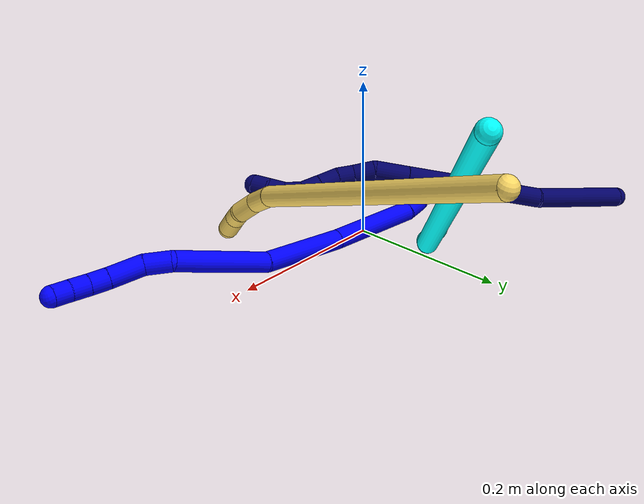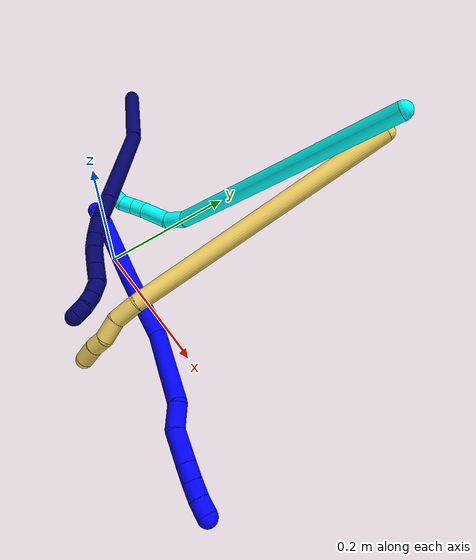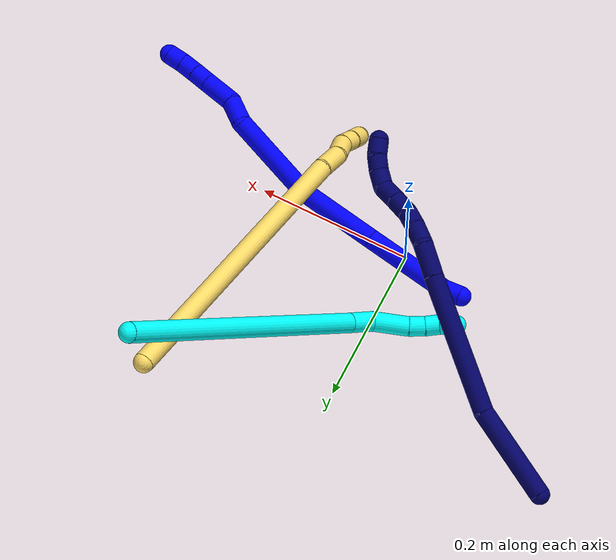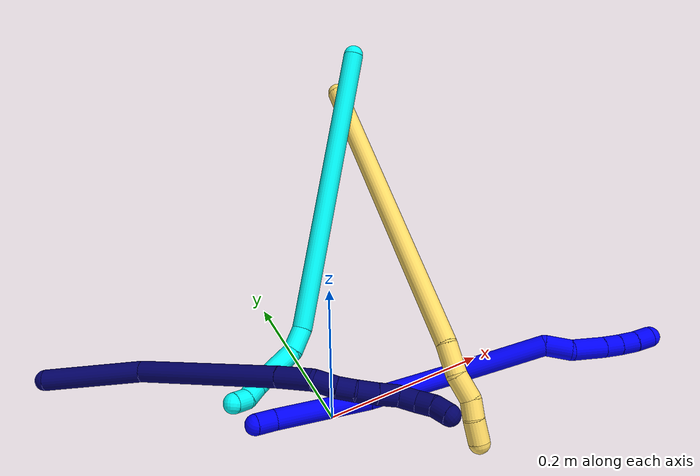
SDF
<sdf version="1.7">
 <world name="default">
  <model name="bin">
   <static>1</static>
   <link name="bottom">
    <collision name="collision-bottom">
     <pose>0 0 -0.01 0 -0 0</pose>
     <geometry><box><size>0.8 0.6 0.02</size></box></geometry>
     <surface>
      <friction><ode><mu>100</mu><mu2>100</mu2></ode></friction>
      <contact><collide_bitmask>65535</collide_bitmask></contact>
     </surface>
    </collision>
   </link>
   <link name="west_wall">
    <collision name="collision-west_wall">
     <pose>-0.41 0 0.1 0 -0 0</pose>
     <geometry><box><size>0.02 0.6 0.2</size></box></geometry>
     <surface>
      <friction><ode><mu>100</mu><mu2>100</mu2></ode></friction>
      <contact><collide_bitmask>65535</collide_bitmask></contact>
     </surface>
    </collision>
   </link>
   <link name="east_wall">
    <collision name="collision-east_wall">
     <pose>0.41 0 0.1 0 -0 0</pose>
     <geometry><box><size>0.02 0.6 0.2</size></box></geometry>
     <surface>
      <friction><ode><mu>100</mu><mu2>100</mu2></ode></friction>
      <contact><collide_bitmask>65535</collide_bitmask></contact>
     </surface>
    </collision>
   </link>
   <link name="south_wall">
    <collision name="collision-south_wall">
     <pose>0 -0.31 0.1 0 -0 0</pose>
     <geometry><box><size>0.8 0.02 0.2</size></box></geometry>
     <surface>
      <friction><ode><mu>100</mu><mu2>100</mu2></ode></friction>
      <contact><collide_bitmask>65535</collide_bitmask></contact>
     </surface>
    </collision>
   </link>
   <link name="north_wall">
    <collision name="collision-north_wall">
     <pose>0 0.31 0.1 0 -0 0</pose>
     <geometry><box><size>0.8 0.02 0.2</size></box></geometry>
     <surface>
      <friction><ode><mu>100</mu><mu2>100</mu2></ode></friction>
      <contact><collide_bitmask>65535</collide_bitmask></contact>
     </surface>
    </collision>
   </link>
  </model>
  <model name="1">
   <static>0</static>
   <link name="1">
    <collision name="collision-cylinder-e_1_1_4">
     <pose>0.012101 -0.000627 0.001517 0.392177 1.43598 0.343613</pose>
     <geometry><cylinder><radius>0.0125</radius><length>0.024423</length></cylinder></geometry>
     <surface>
      <friction><ode><mu>1.16</mu><mu2>1.16</mu2><slip1>0</slip1><slip2>0</slip2></ode></friction>
      <contact><ode><kp>1e+06</kp><kd>1</kd><max_vel>0</max_vel><min_depth>0.001</min_depth></ode></contact>
     </surface>
    </collision>
    <visual name="visual-cylinder-e_1_1_4">
     <pose>0.012101 -0.000627 0.001517 0.392177 1.43598 0.343613</pose>
     <geometry><cylinder><radius>0.0125</radius><length>0.024423</length></cylinder></geometry>
     <material><ambient>0 0 1 1</ambient></material>
    </visual>
    <collision name="collision-cylinder-e_2_4_5">
     <pose>0.077294 -0.01362 0.019102 0.655877 1.206 0.460221</pose>
     <geometry><cylinder><radius>0.0125</radius><length>0.113665</length></cylinder></geometry>
     <surface>
      <friction><ode><mu>1.16</mu><mu2>1.16</mu2><slip1>0</slip1><slip2>0</slip2></ode></friction>
      <contact><ode><kp>1e+06</kp><kd>1</kd><max_vel>0</max_vel><min_depth>0.001</min_depth></ode></contact>
     </surface>
    </collision>
    <visual name="visual-cylinder-e_2_4_5">
     <pose>0.077294 -0.01362 0.019102 0.655877 1.206 0.460221</pose>
     <geometry><cylinder><radius>0.0125</radius><length>0.113665</length></cylinder></geometry>
     <material><ambient>0 0 1 1</ambient></material>
    </visual>
    <collision name="collision-cylinder-e_3_5_6">
     <pose>0.178478 -0.035902 0.05471 0.469662 1.14326 0.305404</pose>
     <geometry><cylinder><radius>0.0125</radius><length>0.105696</length></cylinder></geometry>
     <surface>
      <friction><ode><mu>1.16</mu><mu2>1.16</mu2><slip1>0</slip1><slip2>0</slip2></ode></friction>
      <contact><ode><kp>1e+06</kp><kd>1</kd><max_vel>0</max_vel><min_depth>0.001</min_depth></ode></contact>
     </surface>
    </collision>
    <visual name="visual-cylinder-e_3_5_6">
     <pose>0.178478 -0.035902 0.05471 0.469662 1.14326 0.305404</pose>
     <geometry><cylinder><radius>0.0125</radius><length>0.105696</length></cylinder></geometry>
     <material><ambient>0 0 1 1</ambient></material>
    </visual>
    <collision name="collision-cylinder-e_4_6_7">
     <pose>0.271136 -0.065005 0.107903 0.518151 0.855248 0.240411</pose>
     <geometry><cylinder><radius>0.0125</radius><length>0.118099</length></cylinder></geometry>
     <surface>
      <friction><ode><mu>1.16</mu><mu2>1.16</mu2><slip1>0</slip1><slip2>0</slip2></ode></friction>
      <contact><ode><kp>1e+06</kp><kd>1</kd><max_vel>0</max_vel><min_depth>0.001</min_depth></ode></contact>
     </surface>
    </collision>
    <visual name="visual-cylinder-e_4_6_7">
     <pose>0.271136 -0.065005 0.107903 0.518151 0.855248 0.240411</pose>
     <geometry><cylinder><radius>0.0125</radius><length>0.118099</length></cylinder></geometry>
     <material><ambient>0 0 1 1</ambient></material>
    </visual>
    <collision name="collision-cylinder-e_5_7_8">
     <pose>0.327197 -0.094861 0.145277 1.23525 0.793931 0.578849</pose>
     <geometry><cylinder><radius>0.0125</radius><length>0.032238</length></cylinder></geometry>
     <surface>
      <friction><ode><mu>1.16</mu><mu2>1.16</mu2><slip1>0</slip1><slip2>0</slip2></ode></friction>
      <contact><ode><kp>1e+06</kp><kd>1</kd><max_vel>0</max_vel><min_depth>0.001</min_depth></ode></contact>
     </surface>
    </collision>
    <visual name="visual-cylinder-e_5_7_8">
     <pose>0.327197 -0.094861 0.145277 1.23525 0.793931 0.578849</pose>
     <geometry><cylinder><radius>0.0125</radius><length>0.032238</length></cylinder></geometry>
     <material><ambient>0 0 1 1</ambient></material>
    </visual>
    <collision name="collision-cylinder-e_6_8_9">
     <pose>0.35812 -0.111949 0.153613 0.947343 1.1844 0.664151</pose>
     <geometry><cylinder><radius>0.0125</radius><length>0.041948</length></cylinder></geometry>
     <surface>
      <friction><ode><mu>1.16</mu><mu2>1.16</mu2><slip1>0</slip1><slip2>0</slip2></ode></friction>
      <contact><ode><kp>1e+06</kp><kd>1</kd><max_vel>0</max_vel><min_depth>0.001</min_depth></ode></contact>
     </surface>
    </collision>
    <visual name="visual-cylinder-e_6_8_9">
     <pose>0.35812 -0.111949 0.153613 0.947343 1.1844 0.664151</pose>
     <geometry><cylinder><radius>0.0125</radius><length>0.041948</length></cylinder></geometry>
     <material><ambient>0 0 1 1</ambient></material>
    </visual>
    <collision name="collision-cylinder-e_7_9_10">
     <pose>0.387473 -0.121516 0.161301 0.797885 1.15347 0.535286</pose>
     <geometry><cylinder><radius>0.0125</radius><length>0.021715</length></cylinder></geometry>
     <surface>
      <friction><ode><mu>1.16</mu><mu2>1.16</mu2><slip1>0</slip1><slip2>0</slip2></ode></friction>
      <contact><ode><kp>1e+06</kp><kd>1</kd><max_vel>0</max_vel><min_depth>0.001</min_depth></ode></contact>
     </surface>
    </collision>
    <visual name="visual-cylinder-e_7_9_10">
     <pose>0.387473 -0.121516 0.161301 0.797885 1.15347 0.535286</pose>
     <geometry><cylinder><radius>0.0125</radius><length>0.021715</length></cylinder></geometry>
     <material><ambient>0 0 1 1</ambient></material>
    </visual>
    <collision name="collision-cylinder-e_8_10_11">
     <pose>0.407068 -0.127409 0.167824 0.67157 1.14308 0.441599</pose>
     <geometry><cylinder><radius>0.0125</radius><length>0.021252</length></cylinder></geometry>
     <surface>
      <friction><ode><mu>1.16</mu><mu2>1.16</mu2><slip1>0</slip1><slip2>0</slip2></ode></friction>
      <contact><ode><kp>1e+06</kp><kd>1</kd><max_vel>0</max_vel><min_depth>0.001</min_depth></ode></contact>
     </surface>
    </collision>
    <visual name="visual-cylinder-e_8_10_11">
     <pose>0.407068 -0.127409 0.167824 0.67157 1.14308 0.441599</pose>
     <geometry><cylinder><radius>0.0125</radius><length>0.021252</length></cylinder></geometry>
     <material><ambient>0 0 1 1</ambient></material>
    </visual>
    <collision name="collision-cylinder-e_9_11_2">
     <pose>0.426346 -0.131838 0.175106 0.414609 1.15989 0.273841</pose>
     <geometry><cylinder><radius>0.0125</radius><length>0.020964</length></cylinder></geometry>
     <surface>
      <friction><ode><mu>1.16</mu><mu2>1.16</mu2><slip1>0</slip1><slip2>0</slip2></ode></friction>
      <contact><ode><kp>1e+06</kp><kd>1</kd><max_vel>0</max_vel><min_depth>0.001</min_depth></ode></contact>
     </surface>
    </collision>
    <visual name="visual-cylinder-e_9_11_2">
     <pose>0.426346 -0.131838 0.175106 0.414609 1.15989 0.273841</pose>
     <geometry><cylinder><radius>0.0125</radius><length>0.020964</length></cylinder></geometry>
     <material><ambient>0 0 1 1</ambient></material>
    </visual>
    <collision name="collision-sphere-2">
     <pose>0.435955 -0.133525 0.178938 0 -0 0</pose>
     <geometry><sphere><radius>0.0125</radius></sphere></geometry>
     <surface>
      <friction><ode><mu>1.16</mu><mu2>1.16</mu2><slip1>0</slip1><slip2>0</slip2></ode></friction>
      <contact><ode><kp>1e+06</kp><kd>1</kd><max_vel>0</max_vel><min_depth>0.001</min_depth></ode></contact>
     </surface>
    </collision>
    <visual name="visual-sphere-2">
     <pose>0.435955 -0.133525 0.178938 0 -0 0</pose>
     <geometry><sphere><radius>0.0125</radius></sphere></geometry>
     <material><ambient>0 0 1 1</ambient></material>
    </visual>
    <collision name="collision-sphere-11">
     <pose>0.416736 -0.130151 0.171274 0 -0 0</pose>
     <geometry><sphere><radius>0.0125</radius></sphere></geometry>
     <surface>
      <friction><ode><mu>1.16</mu><mu2>1.16</mu2><slip1>0</slip1><slip2>0</slip2></ode></friction>
      <contact><ode><kp>1e+06</kp><kd>1</kd><max_vel>0</max_vel><min_depth>0.001</min_depth></ode></contact>
     </surface>
    </collision>
    <visual name="visual-sphere-11">
     <pose>0.416736 -0.130151 0.171274 0 -0 0</pose>
     <geometry><sphere><radius>0.0125</radius></sphere></geometry>
     <material><ambient>0 0 1 1</ambient></material>
    </visual>
    <collision name="collision-sphere-10">
     <pose>0.397399 -0.124666 0.164373 0 -0 0</pose>
     <geometry><sphere><radius>0.0125</radius></sphere></geometry>
     <surface>
      <friction><ode><mu>1.16</mu><mu2>1.16</mu2><slip1>0</slip1><slip2>0</slip2></ode></friction>
      <contact><ode><kp>1e+06</kp><kd>1</kd><max_vel>0</max_vel><min_depth>0.001</min_depth></ode></contact>
     </surface>
    </collision>
    <visual name="visual-sphere-10">
     <pose>0.397399 -0.124666 0.164373 0 -0 0</pose>
     <geometry><sphere><radius>0.0125</radius></sphere></geometry>
     <material><ambient>0 0 1 1</ambient></material>
    </visual>
    <collision name="collision-sphere-9">
     <pose>0.377547 -0.118366 0.158228 0 -0 0</pose>
     <geometry><sphere><radius>0.0125</radius></sphere></geometry>
     <surface>
      <friction><ode><mu>1.16</mu><mu2>1.16</mu2><slip1>0</slip1><slip2>0</slip2></ode></friction>
      <contact><ode><kp>1e+06</kp><kd>1</kd><max_vel>0</max_vel><min_depth>0.001</min_depth></ode></contact>
     </surface>
    </collision>
    <visual name="visual-sphere-9">
     <pose>0.377547 -0.118366 0.158228 0 -0 0</pose>
     <geometry><sphere><radius>0.0125</radius></sphere></geometry>
     <material><ambient>0 0 1 1</ambient></material>
    </visual>
    <collision name="collision-sphere-4">
     <pose>0.024202 -0.001255 0.003033 0 -0 0</pose>
     <geometry><sphere><radius>0.0125</radius></sphere></geometry>
     <surface>
      <friction><ode><mu>1.16</mu><mu2>1.16</mu2><slip1>0</slip1><slip2>0</slip2></ode></friction>
      <contact><ode><kp>1e+06</kp><kd>1</kd><max_vel>0</max_vel><min_depth>0.001</min_depth></ode></contact>
     </surface>
    </collision>
    <visual name="visual-sphere-4">
     <pose>0.024202 -0.001255 0.003033 0 -0 0</pose>
     <geometry><sphere><radius>0.0125</radius></sphere></geometry>
     <material><ambient>0 0 1 1</ambient></material>
    </visual>
    <collision name="collision-sphere-1">
     <geometry><sphere><radius>0.0125</radius></sphere></geometry>
     <surface>
      <friction><ode><mu>1.16</mu><mu2>1.16</mu2><slip1>0</slip1><slip2>0</slip2></ode></friction>
      <contact><ode><kp>1e+06</kp><kd>1</kd><max_vel>0</max_vel><min_depth>0.001</min_depth></ode></contact>
     </surface>
    </collision>
    <visual name="visual-sphere-1">
     <geometry><sphere><radius>0.0125</radius></sphere></geometry>
     <material><ambient>0 0 1 1</ambient></material>
    </visual>
    <collision name="collision-sphere-8">
     <pose>0.338692 -0.105531 0.148998 0 -0 0</pose>
     <geometry><sphere><radius>0.0125</radius></sphere></geometry>
     <surface>
      <friction><ode><mu>1.16</mu><mu2>1.16</mu2><slip1>0</slip1><slip2>0</slip2></ode></friction>
      <contact><ode><kp>1e+06</kp><kd>1</kd><max_vel>0</max_vel><min_depth>0.001</min_depth></ode></contact>
     </surface>
    </collision>
    <visual name="visual-sphere-8">
     <pose>0.338692 -0.105531 0.148998 0 -0 0</pose>
     <geometry><sphere><radius>0.0125</radius></sphere></geometry>
     <material><ambient>0 0 1 1</ambient></material>
    </visual>
    <collision name="collision-sphere-5">
     <pose>0.130387 -0.025985 0.035171 0 -0 0</pose>
     <geometry><sphere><radius>0.0125</radius></sphere></geometry>
     <surface>
      <friction><ode><mu>1.16</mu><mu2>1.16</mu2><slip1>0</slip1><slip2>0</slip2></ode></friction>
      <contact><ode><kp>1e+06</kp><kd>1</kd><max_vel>0</max_vel><min_depth>0.001</min_depth></ode></contact>
     </surface>
    </collision>
    <visual name="visual-sphere-5">
     <pose>0.130387 -0.025985 0.035171 0 -0 0</pose>
     <geometry><sphere><radius>0.0125</radius></sphere></geometry>
     <material><ambient>0 0 1 1</ambient></material>
    </visual>
    <collision name="collision-sphere-6">
     <pose>0.226569 -0.045819 0.07425 0 -0 0</pose>
     <geometry><sphere><radius>0.0125</radius></sphere></geometry>
     <surface>
      <friction><ode><mu>1.16</mu><mu2>1.16</mu2><slip1>0</slip1><slip2>0</slip2></ode></friction>
      <contact><ode><kp>1e+06</kp><kd>1</kd><max_vel>0</max_vel><min_depth>0.001</min_depth></ode></contact>
     </surface>
    </collision>
    <visual name="visual-sphere-6">
     <pose>0.226569 -0.045819 0.07425 0 -0 0</pose>
     <geometry><sphere><radius>0.0125</radius></sphere></geometry>
     <material><ambient>0 0 1 1</ambient></material>
    </visual>
    <collision name="collision-sphere-7">
     <pose>0.315703 -0.084191 0.141556 0 -0 0</pose>
     <geometry><sphere><radius>0.0125</radius></sphere></geometry>
     <surface>
      <friction><ode><mu>1.16</mu><mu2>1.16</mu2><slip1>0</slip1><slip2>0</slip2></ode></friction>
      <contact><ode><kp>1e+06</kp><kd>1</kd><max_vel>0</max_vel><min_depth>0.001</min_depth></ode></contact>
     </surface>
    </collision>
    <visual name="visual-sphere-7">
     <pose>0.315703 -0.084191 0.141556 0 -0 0</pose>
     <geometry><sphere><radius>0.0125</radius></sphere></geometry>
     <material><ambient>0 0 1 1</ambient></material>
    </visual>
    <inertial>
     <pose>0.22308 -0.057799 0.085203 0 -0 0</pose>
     <mass>0.5</mass>
     <inertia>
      <ixx>0.000272</ixx>
      <ixy>0</ixy>
      <ixz>0</ixz>
      <iyy>0.00042</iyy>
      <iyz>0</iyz>
      <izz>-0.000222</izz>
     </inertia>
    </inertial>
   </link>
   <pose>-0.087318 0.019626 0.016431 0.069956 0.325902 0.056881</pose>
  </model>
  <model name="3">
   <static>0</static>
   <link name="3">
    <collision name="collision-cylinder-e_1_1_4">
     <pose>-0.019446 0.00034 -0.180207 -3.13971 -0.10749 3.10655</pose>
     <geometry><cylinder><radius>0.0125</radius><length>0.362508</length></cylinder></geometry>
     <surface>
      <friction><ode><mu>1.16</mu><mu2>1.16</mu2><slip1>0</slip1><slip2>0</slip2></ode></friction>
      <contact><ode><kp>1e+06</kp><kd>1</kd><max_vel>0</max_vel><min_depth>0.001</min_depth></ode></contact>
     </surface>
    </collision>
    <visual name="visual-cylinder-e_1_1_4">
     <pose>-0.019446 0.00034 -0.180207 -3.13971 -0.10749 3.10655</pose>
     <geometry><cylinder><radius>0.0125</radius><length>0.362508</length></cylinder></geometry>
     <material><ambient>0.003922 1 0.996078 1</ambient></material>
    </visual>
    <collision name="collision-cylinder-e_2_4_5">
     <pose>-0.04101 -0.004914 -0.37501 2.7756 -0.134769 -0.699348</pose>
     <geometry><cylinder><radius>0.0125</radius><length>0.031547</length></cylinder></geometry>
     <surface>
      <friction><ode><mu>1.16</mu><mu2>1.16</mu2><slip1>0</slip1><slip2>0</slip2></ode></friction>
      <contact><ode><kp>1e+06</kp><kd>1</kd><max_vel>0</max_vel><min_depth>0.001</min_depth></ode></contact>
     </surface>
    </collision>
    <visual name="visual-cylinder-e_2_4_5">
     <pose>-0.04101 -0.004914 -0.37501 2.7756 -0.134769 -0.699348</pose>
     <geometry><cylinder><radius>0.0125</radius><length>0.031547</length></cylinder></geometry>
     <material><ambient>0.003922 1 0.996078 1</ambient></material>
    </visual>
    <collision name="collision-cylinder-e_3_5_6">
     <pose>-0.051284 -0.024239 -0.405723 2.43598 -0.367616 -0.935101</pose>
     <geometry><cylinder><radius>0.0125</radius><length>0.045377</length></cylinder></geometry>
     <surface>
      <friction><ode><mu>1.16</mu><mu2>1.16</mu2><slip1>0</slip1><slip2>0</slip2></ode></friction>
      <contact><ode><kp>1e+06</kp><kd>1</kd><max_vel>0</max_vel><min_depth>0.001</min_depth></ode></contact>
     </surface>
    </collision>
    <visual name="visual-cylinder-e_3_5_6">
     <pose>-0.051284 -0.024239 -0.405723 2.43598 -0.367616 -0.935101</pose>
     <geometry><cylinder><radius>0.0125</radius><length>0.045377</length></cylinder></geometry>
     <material><ambient>0.003922 1 0.996078 1</ambient></material>
    </visual>
    <collision name="collision-cylinder-e_4_6_7">
     <pose>-0.061644 -0.044902 -0.428959 2.36947 -0.218491 -0.52714</pose>
     <geometry><cylinder><radius>0.0125</radius><length>0.020358</length></cylinder></geometry>
     <surface>
      <friction><ode><mu>1.16</mu><mu2>1.16</mu2><slip1>0</slip1><slip2>0</slip2></ode></friction>
      <contact><ode><kp>1e+06</kp><kd>1</kd><max_vel>0</max_vel><min_depth>0.001</min_depth></ode></contact>
     </surface>
    </collision>
    <visual name="visual-cylinder-e_4_6_7">
     <pose>-0.061644 -0.044902 -0.428959 2.36947 -0.218491 -0.52714</pose>
     <geometry><cylinder><radius>0.0125</radius><length>0.020358</length></cylinder></geometry>
     <material><ambient>0.003922 1 0.996078 1</ambient></material>
    </visual>
    <collision name="collision-cylinder-e_5_7_8">
     <pose>-0.065011 -0.058985 -0.443066 2.34475 -0.115571 -0.273156</pose>
     <geometry><cylinder><radius>0.0125</radius><length>0.02013</length></cylinder></geometry>
     <surface>
      <friction><ode><mu>1.16</mu><mu2>1.16</mu2><slip1>0</slip1><slip2>0</slip2></ode></friction>
      <contact><ode><kp>1e+06</kp><kd>1</kd><max_vel>0</max_vel><min_depth>0.001</min_depth></ode></contact>
     </surface>
    </collision>
    <visual name="visual-cylinder-e_5_7_8">
     <pose>-0.065011 -0.058985 -0.443066 2.34475 -0.115571 -0.273156</pose>
     <geometry><cylinder><radius>0.0125</radius><length>0.02013</length></cylinder></geometry>
     <material><ambient>0.003922 1 0.996078 1</ambient></material>
    </visual>
    <collision name="collision-cylinder-e_6_8_2">
     <pose>-0.068842 -0.07536 -0.45298 1.87788 -0.269162 -0.365827</pose>
     <geometry><cylinder><radius>0.0125</radius><length>0.02008</length></cylinder></geometry>
     <surface>
      <friction><ode><mu>1.16</mu><mu2>1.16</mu2><slip1>0</slip1><slip2>0</slip2></ode></friction>
      <contact><ode><kp>1e+06</kp><kd>1</kd><max_vel>0</max_vel><min_depth>0.001</min_depth></ode></contact>
     </surface>
    </collision>
    <visual name="visual-cylinder-e_6_8_2">
     <pose>-0.068842 -0.07536 -0.45298 1.87788 -0.269162 -0.365827</pose>
     <geometry><cylinder><radius>0.0125</radius><length>0.02008</length></cylinder></geometry>
     <material><ambient>0.003922 1 0.996078 1</ambient></material>
    </visual>
    <collision name="collision-sphere-2">
     <pose>-0.071512 -0.084586 -0.455905 0 -0 0</pose>
     <geometry><sphere><radius>0.0125</radius></sphere></geometry>
     <surface>
      <friction><ode><mu>1.16</mu><mu2>1.16</mu2><slip1>0</slip1><slip2>0</slip2></ode></friction>
      <contact><ode><kp>1e+06</kp><kd>1</kd><max_vel>0</max_vel><min_depth>0.001</min_depth></ode></contact>
     </surface>
    </collision>
    <visual name="visual-sphere-2">
     <pose>-0.071512 -0.084586 -0.455905 0 -0 0</pose>
     <geometry><sphere><radius>0.0125</radius></sphere></geometry>
     <material><ambient>0.003922 1 0.996078 1</ambient></material>
    </visual>
    <collision name="collision-sphere-4">
     <pose>-0.038891 0.000679 -0.360415 0 -0 0</pose>
     <geometry><sphere><radius>0.0125</radius></sphere></geometry>
     <surface>
      <friction><ode><mu>1.16</mu><mu2>1.16</mu2><slip1>0</slip1><slip2>0</slip2></ode></friction>
      <contact><ode><kp>1e+06</kp><kd>1</kd><max_vel>0</max_vel><min_depth>0.001</min_depth></ode></contact>
     </surface>
    </collision>
    <visual name="visual-sphere-4">
     <pose>-0.038891 0.000679 -0.360415 0 -0 0</pose>
     <geometry><sphere><radius>0.0125</radius></sphere></geometry>
     <material><ambient>0.003922 1 0.996078 1</ambient></material>
    </visual>
    <collision name="collision-sphere-1">
     <geometry><sphere><radius>0.0125</radius></sphere></geometry>
     <surface>
      <friction><ode><mu>1.16</mu><mu2>1.16</mu2><slip1>0</slip1><slip2>0</slip2></ode></friction>
      <contact><ode><kp>1e+06</kp><kd>1</kd><max_vel>0</max_vel><min_depth>0.001</min_depth></ode></contact>
     </surface>
    </collision>
    <visual name="visual-sphere-1">
     <geometry><sphere><radius>0.0125</radius></sphere></geometry>
     <material><ambient>0.003922 1 0.996078 1</ambient></material>
    </visual>
    <collision name="collision-sphere-8">
     <pose>-0.066172 -0.066135 -0.450054 0 -0 0</pose>
     <geometry><sphere><radius>0.0125</radius></sphere></geometry>
     <surface>
      <friction><ode><mu>1.16</mu><mu2>1.16</mu2><slip1>0</slip1><slip2>0</slip2></ode></friction>
      <contact><ode><kp>1e+06</kp><kd>1</kd><max_vel>0</max_vel><min_depth>0.001</min_depth></ode></contact>
     </surface>
    </collision>
    <visual name="visual-sphere-8">
     <pose>-0.066172 -0.066135 -0.450054 0 -0 0</pose>
     <geometry><sphere><radius>0.0125</radius></sphere></geometry>
     <material><ambient>0.003922 1 0.996078 1</ambient></material>
    </visual>
    <collision name="collision-sphere-5">
     <pose>-0.04313 -0.010508 -0.389606 0 -0 0</pose>
     <geometry><sphere><radius>0.0125</radius></sphere></geometry>
     <surface>
      <friction><ode><mu>1.16</mu><mu2>1.16</mu2><slip1>0</slip1><slip2>0</slip2></ode></friction>
      <contact><ode><kp>1e+06</kp><kd>1</kd><max_vel>0</max_vel><min_depth>0.001</min_depth></ode></contact>
     </surface>
    </collision>
    <visual name="visual-sphere-5">
     <pose>-0.04313 -0.010508 -0.389606 0 -0 0</pose>
     <geometry><sphere><radius>0.0125</radius></sphere></geometry>
     <material><ambient>0.003922 1 0.996078 1</ambient></material>
    </visual>
    <collision name="collision-sphere-6">
     <pose>-0.059438 -0.037969 -0.421839 0 -0 0</pose>
     <geometry><sphere><radius>0.0125</radius></sphere></geometry>
     <surface>
      <friction><ode><mu>1.16</mu><mu2>1.16</mu2><slip1>0</slip1><slip2>0</slip2></ode></friction>
      <contact><ode><kp>1e+06</kp><kd>1</kd><max_vel>0</max_vel><min_depth>0.001</min_depth></ode></contact>
     </surface>
    </collision>
    <visual name="visual-sphere-6">
     <pose>-0.059438 -0.037969 -0.421839 0 -0 0</pose>
     <geometry><sphere><radius>0.0125</radius></sphere></geometry>
     <material><ambient>0.003922 1 0.996078 1</ambient></material>
    </visual>
    <collision name="collision-sphere-7">
     <pose>-0.063851 -0.051835 -0.436078 0 -0 0</pose>
     <geometry><sphere><radius>0.0125</radius></sphere></geometry>
     <surface>
      <friction><ode><mu>1.16</mu><mu2>1.16</mu2><slip1>0</slip1><slip2>0</slip2></ode></friction>
      <contact><ode><kp>1e+06</kp><kd>1</kd><max_vel>0</max_vel><min_depth>0.001</min_depth></ode></contact>
     </surface>
    </collision>
    <visual name="visual-sphere-7">
     <pose>-0.063851 -0.051835 -0.436078 0 -0 0</pose>
     <geometry><sphere><radius>0.0125</radius></sphere></geometry>
     <material><ambient>0.003922 1 0.996078 1</ambient></material>
    </visual>
    <inertial>
     <pose>-0.029232 -0.009493 -0.24463 0 -0 0</pose>
     <mass>0.5</mass>
     <inertia>
      <ixx>-0.003824</ixx>
      <ixy>0</ixy>
      <ixz>0</ixz>
      <iyy>0.004095</iyy>
      <iyz>0</iyz>
      <izz>0.0004</izz>
     </inertia>
    </inertial>
   </link>
   <pose>0.196262 0.315734 0.277716 -0.82306 -0.28904 -0.856495</pose>
  </model>
  <model name="5">
   <static>0</static>
   <link name="5">
    <collision name="collision-cylinder-e_1_1_4">
     <pose>-0.026257 -0.148906 -0.117601 2.23926 -0.137509 -0.282377</pose>
     <geometry><cylinder><radius>0.0125</radius><length>0.383106</length></cylinder></geometry>
     <surface>
      <friction><ode><mu>1.16</mu><mu2>1.16</mu2><slip1>0</slip1><slip2>0</slip2></ode></friction>
      <contact><ode><kp>1e+06</kp><kd>1</kd><max_vel>0</max_vel><min_depth>0.001</min_depth></ode></contact>
     </surface>
    </collision>
    <visual name="visual-cylinder-e_1_1_4">
     <pose>-0.026257 -0.148906 -0.117601 2.23926 -0.137509 -0.282377</pose>
     <geometry><cylinder><radius>0.0125</radius><length>0.383106</length></cylinder></geometry>
     <material><ambient>1 0.858824 0.4 1</ambient></material>
    </visual>
    <collision name="collision-cylinder-e_2_4_5">
     <pose>-0.055295 -0.309592 -0.249054 2.43689 -0.151713 -0.407659</pose>
     <geometry><cylinder><radius>0.0125</radius><length>0.03679</length></cylinder></geometry>
     <surface>
      <friction><ode><mu>1.16</mu><mu2>1.16</mu2><slip1>0</slip1><slip2>0</slip2></ode></friction>
      <contact><ode><kp>1e+06</kp><kd>1</kd><max_vel>0</max_vel><min_depth>0.001</min_depth></ode></contact>
     </surface>
    </collision>
    <visual name="visual-cylinder-e_2_4_5">
     <pose>-0.055295 -0.309592 -0.249054 2.43689 -0.151713 -0.407659</pose>
     <geometry><cylinder><radius>0.0125</radius><length>0.03679</length></cylinder></geometry>
     <material><ambient>1 0.858824 0.4 1</ambient></material>
    </visual>
    <collision name="collision-cylinder-e_3_5_6">
     <pose>-0.055767 -0.329776 -0.275641 2.55822 0.150109 0.490792</pose>
     <geometry><cylinder><radius>0.0125</radius><length>0.030864</length></cylinder></geometry>
     <surface>
      <friction><ode><mu>1.16</mu><mu2>1.16</mu2><slip1>0</slip1><slip2>0</slip2></ode></friction>
      <contact><ode><kp>1e+06</kp><kd>1</kd><max_vel>0</max_vel><min_depth>0.001</min_depth></ode></contact>
     </surface>
    </collision>
    <visual name="visual-cylinder-e_3_5_6">
     <pose>-0.055767 -0.329776 -0.275641 2.55822 0.150109 0.490792</pose>
     <geometry><cylinder><radius>0.0125</radius><length>0.030864</length></cylinder></geometry>
     <material><ambient>1 0.858824 0.4 1</ambient></material>
    </visual>
    <collision name="collision-cylinder-e_4_6_7">
     <pose>-0.055955 -0.343324 -0.297866 2.64499 -0.227273 -0.845959</pose>
     <geometry><cylinder><radius>0.0125</radius><length>0.022158</length></cylinder></geometry>
     <surface>
      <friction><ode><mu>1.16</mu><mu2>1.16</mu2><slip1>0</slip1><slip2>0</slip2></ode></friction>
      <contact><ode><kp>1e+06</kp><kd>1</kd><max_vel>0</max_vel><min_depth>0.001</min_depth></ode></contact>
     </surface>
    </collision>
    <visual name="visual-cylinder-e_4_6_7">
     <pose>-0.055955 -0.343324 -0.297866 2.64499 -0.227273 -0.845959</pose>
     <geometry><cylinder><radius>0.0125</radius><length>0.022158</length></cylinder></geometry>
     <material><ambient>1 0.858824 0.4 1</ambient></material>
    </visual>
    <collision name="collision-cylinder-e_5_7_2">
     <pose>-0.059682 -0.353549 -0.319847 2.75515 -0.090994 -0.457244</pose>
     <geometry><cylinder><radius>0.0125</radius><length>0.027083</length></cylinder></geometry>
     <surface>
      <friction><ode><mu>1.16</mu><mu2>1.16</mu2><slip1>0</slip1><slip2>0</slip2></ode></friction>
      <contact><ode><kp>1e+06</kp><kd>1</kd><max_vel>0</max_vel><min_depth>0.001</min_depth></ode></contact>
     </surface>
    </collision>
    <visual name="visual-cylinder-e_5_7_2">
     <pose>-0.059682 -0.353549 -0.319847 2.75515 -0.090994 -0.457244</pose>
     <geometry><cylinder><radius>0.0125</radius><length>0.027083</length></cylinder></geometry>
     <material><ambient>1 0.858824 0.4 1</ambient></material>
    </visual>
    <collision name="collision-sphere-2">
     <pose>-0.060913 -0.358632 -0.332338 0 -0 0</pose>
     <geometry><sphere><radius>0.0125</radius></sphere></geometry>
     <surface>
      <friction><ode><mu>1.16</mu><mu2>1.16</mu2><slip1>0</slip1><slip2>0</slip2></ode></friction>
      <contact><ode><kp>1e+06</kp><kd>1</kd><max_vel>0</max_vel><min_depth>0.001</min_depth></ode></contact>
     </surface>
    </collision>
    <visual name="visual-sphere-2">
     <pose>-0.060913 -0.358632 -0.332338 0 -0 0</pose>
     <geometry><sphere><radius>0.0125</radius></sphere></geometry>
     <material><ambient>1 0.858824 0.4 1</ambient></material>
    </visual>
    <collision name="collision-sphere-7">
     <pose>-0.058452 -0.348467 -0.307356 0 -0 0</pose>
     <geometry><sphere><radius>0.0125</radius></sphere></geometry>
     <surface>
      <friction><ode><mu>1.16</mu><mu2>1.16</mu2><slip1>0</slip1><slip2>0</slip2></ode></friction>
      <contact><ode><kp>1e+06</kp><kd>1</kd><max_vel>0</max_vel><min_depth>0.001</min_depth></ode></contact>
     </surface>
    </collision>
    <visual name="visual-sphere-7">
     <pose>-0.058452 -0.348467 -0.307356 0 -0 0</pose>
     <geometry><sphere><radius>0.0125</radius></sphere></geometry>
     <material><ambient>1 0.858824 0.4 1</ambient></material>
    </visual>
    <collision name="collision-sphere-6">
     <pose>-0.053459 -0.338181 -0.288376 0 -0 0</pose>
     <geometry><sphere><radius>0.0125</radius></sphere></geometry>
     <surface>
      <friction><ode><mu>1.16</mu><mu2>1.16</mu2><slip1>0</slip1><slip2>0</slip2></ode></friction>
      <contact><ode><kp>1e+06</kp><kd>1</kd><max_vel>0</max_vel><min_depth>0.001</min_depth></ode></contact>
     </surface>
    </collision>
    <visual name="visual-sphere-6">
     <pose>-0.053459 -0.338181 -0.288376 0 -0 0</pose>
     <geometry><sphere><radius>0.0125</radius></sphere></geometry>
     <material><ambient>1 0.858824 0.4 1</ambient></material>
    </visual>
    <collision name="collision-sphere-5">
     <pose>-0.058075 -0.321372 -0.262906 0 -0 0</pose>
     <geometry><sphere><radius>0.0125</radius></sphere></geometry>
     <surface>
      <friction><ode><mu>1.16</mu><mu2>1.16</mu2><slip1>0</slip1><slip2>0</slip2></ode></friction>
      <contact><ode><kp>1e+06</kp><kd>1</kd><max_vel>0</max_vel><min_depth>0.001</min_depth></ode></contact>
     </surface>
    </collision>
    <visual name="visual-sphere-5">
     <pose>-0.058075 -0.321372 -0.262906 0 -0 0</pose>
     <geometry><sphere><radius>0.0125</radius></sphere></geometry>
     <material><ambient>1 0.858824 0.4 1</ambient></material>
    </visual>
    <collision name="collision-sphere-1">
     <geometry><sphere><radius>0.0125</radius></sphere></geometry>
     <surface>
      <friction><ode><mu>1.16</mu><mu2>1.16</mu2><slip1>0</slip1><slip2>0</slip2></ode></friction>
      <contact><ode><kp>1e+06</kp><kd>1</kd><max_vel>0</max_vel><min_depth>0.001</min_depth></ode></contact>
     </surface>
    </collision>
    <visual name="visual-sphere-1">
     <geometry><sphere><radius>0.0125</radius></sphere></geometry>
     <material><ambient>1 0.858824 0.4 1</ambient></material>
    </visual>
    <collision name="collision-sphere-4">
     <pose>-0.052515 -0.297813 -0.235201 0 -0 0</pose>
     <geometry><sphere><radius>0.0125</radius></sphere></geometry>
     <surface>
      <friction><ode><mu>1.16</mu><mu2>1.16</mu2><slip1>0</slip1><slip2>0</slip2></ode></friction>
      <contact><ode><kp>1e+06</kp><kd>1</kd><max_vel>0</max_vel><min_depth>0.001</min_depth></ode></contact>
     </surface>
    </collision>
    <visual name="visual-sphere-4">
     <pose>-0.052515 -0.297813 -0.235201 0 -0 0</pose>
     <geometry><sphere><radius>0.0125</radius></sphere></geometry>
     <material><ambient>1 0.858824 0.4 1</ambient></material>
    </visual>
    <inertial>
     <pose>-0.033342 -0.191595 -0.155972 0 -0 0</pose>
     <mass>0.5</mass>
     <inertia>
      <ixx>0.003179</ixx>
      <ixy>0</ixy>
      <ixz>0</ixz>
      <iyy>-0.003995</iyy>
      <iyz>0</iyz>
      <izz>0.004281</izz>
     </inertia>
    </inertial>
   </link>
   <pose>0.176996 0.325214 0.221947 -0.301628 0.005551 0.022586</pose>
  </model>
  <model name="7">
   <static>0</static>
   <link name="7">
    <collision name="collision-cylinder-e_1_1_4">
     <pose>0.046451 -0.021841 -0.031672 2.53789 0.879075 1.97182</pose>
     <geometry><cylinder><radius>0.0125</radius><length>0.120629</length></cylinder></geometry>
     <surface>
      <friction><ode><mu>1.16</mu><mu2>1.16</mu2><slip1>0</slip1><slip2>0</slip2></ode></friction>
      <contact><ode><kp>1e+06</kp><kd>1</kd><max_vel>0</max_vel><min_depth>0.001</min_depth></ode></contact>
     </surface>
    </collision>
    <visual name="visual-cylinder-e_1_1_4">
     <pose>0.046451 -0.021841 -0.031672 2.53789 0.879075 1.97182</pose>
     <geometry><cylinder><radius>0.0125</radius><length>0.120629</length></cylinder></geometry>
     <material><ambient>0.003922 0 0.403922 1</ambient></material>
    </visual>
    <collision name="collision-cylinder-e_2_4_5">
     <pose>0.150115 -0.094531 -0.107331 2.28396 0.705042 1.35517</pose>
     <geometry><cylinder><radius>0.0125</radius><length>0.176566</length></cylinder></geometry>
     <surface>
      <friction><ode><mu>1.16</mu><mu2>1.16</mu2><slip1>0</slip1><slip2>0</slip2></ode></friction>
      <contact><ode><kp>1e+06</kp><kd>1</kd><max_vel>0</max_vel><min_depth>0.001</min_depth></ode></contact>
     </surface>
    </collision>
    <visual name="visual-cylinder-e_2_4_5">
     <pose>0.150115 -0.094531 -0.107331 2.28396 0.705042 1.35517</pose>
     <geometry><cylinder><radius>0.0125</radius><length>0.176566</length></cylinder></geometry>
     <material><ambient>0.003922 0 0.403922 1</ambient></material>
    </visual>
    <collision name="collision-cylinder-e_3_5_6">
     <pose>0.220602 -0.158284 -0.16238 2.27947 0.663018 1.285</pose>
     <geometry><cylinder><radius>0.0125</radius><length>0.04313</length></cylinder></geometry>
     <surface>
      <friction><ode><mu>1.16</mu><mu2>1.16</mu2><slip1>0</slip1><slip2>0</slip2></ode></friction>
      <contact><ode><kp>1e+06</kp><kd>1</kd><max_vel>0</max_vel><min_depth>0.001</min_depth></ode></contact>
     </surface>
    </collision>
    <visual name="visual-cylinder-e_3_5_6">
     <pose>0.220602 -0.158284 -0.16238 2.27947 0.663018 1.285</pose>
     <geometry><cylinder><radius>0.0125</radius><length>0.04313</length></cylinder></geometry>
     <material><ambient>0.003922 0 0.403922 1</ambient></material>
    </visual>
    <collision name="collision-cylinder-e_4_6_7">
     <pose>0.240298 -0.176164 -0.184111 2.70521 0.499394 1.71026</pose>
     <geometry><cylinder><radius>0.0125</radius><length>0.026822</length></cylinder></geometry>
     <surface>
      <friction><ode><mu>1.16</mu><mu2>1.16</mu2><slip1>0</slip1><slip2>0</slip2></ode></friction>
      <contact><ode><kp>1e+06</kp><kd>1</kd><max_vel>0</max_vel><min_depth>0.001</min_depth></ode></contact>
     </surface>
    </collision>
    <visual name="visual-cylinder-e_4_6_7">
     <pose>0.240298 -0.176164 -0.184111 2.70521 0.499394 1.71026</pose>
     <geometry><cylinder><radius>0.0125</radius><length>0.026822</length></cylinder></geometry>
     <material><ambient>0.003922 0 0.403922 1</ambient></material>
    </visual>
    <collision name="collision-cylinder-e_5_7_8">
     <pose>0.252847 -0.184739 -0.202393 2.69993 0.629102 1.93364</pose>
     <geometry><cylinder><radius>0.0125</radius><length>0.020825</length></cylinder></geometry>
     <surface>
      <friction><ode><mu>1.16</mu><mu2>1.16</mu2><slip1>0</slip1><slip2>0</slip2></ode></friction>
      <contact><ode><kp>1e+06</kp><kd>1</kd><max_vel>0</max_vel><min_depth>0.001</min_depth></ode></contact>
     </surface>
    </collision>
    <visual name="visual-cylinder-e_5_7_8">
     <pose>0.252847 -0.184739 -0.202393 2.69993 0.629102 1.93364</pose>
     <geometry><cylinder><radius>0.0125</radius><length>0.020825</length></cylinder></geometry>
     <material><ambient>0.003922 0 0.403922 1</ambient></material>
    </visual>
    <collision name="collision-cylinder-e_6_8_9">
     <pose>0.266535 -0.189892 -0.21971 2.98278 0.655655 2.6819</pose>
     <geometry><cylinder><radius>0.0125</radius><length>0.024802</length></cylinder></geometry>
     <surface>
      <friction><ode><mu>1.16</mu><mu2>1.16</mu2><slip1>0</slip1><slip2>0</slip2></ode></friction>
      <contact><ode><kp>1e+06</kp><kd>1</kd><max_vel>0</max_vel><min_depth>0.001</min_depth></ode></contact>
     </surface>
    </collision>
    <visual name="visual-cylinder-e_6_8_9">
     <pose>0.266535 -0.189892 -0.21971 2.98278 0.655655 2.6819</pose>
     <geometry><cylinder><radius>0.0125</radius><length>0.024802</length></cylinder></geometry>
     <material><ambient>0.003922 0 0.403922 1</ambient></material>
    </visual>
    <collision name="collision-cylinder-e_7_9_10">
     <pose>0.281999 -0.192865 -0.238783 2.99131 0.695269 2.73188</pose>
     <geometry><cylinder><radius>0.0125</radius><length>0.024675</length></cylinder></geometry>
     <surface>
      <friction><ode><mu>1.16</mu><mu2>1.16</mu2><slip1>0</slip1><slip2>0</slip2></ode></friction>
      <contact><ode><kp>1e+06</kp><kd>1</kd><max_vel>0</max_vel><min_depth>0.001</min_depth></ode></contact>
     </surface>
    </collision>
    <visual name="visual-cylinder-e_7_9_10">
     <pose>0.281999 -0.192865 -0.238783 2.99131 0.695269 2.73188</pose>
     <geometry><cylinder><radius>0.0125</radius><length>0.024675</length></cylinder></geometry>
     <material><ambient>0.003922 0 0.403922 1</ambient></material>
    </visual>
    <collision name="collision-cylinder-e_8_10_11">
     <pose>0.295186 -0.200246 -0.255855 2.48302 0.496942 1.2773</pose>
     <geometry><cylinder><radius>0.0125</radius><length>0.022165</length></cylinder></geometry>
     <surface>
      <friction><ode><mu>1.16</mu><mu2>1.16</mu2><slip1>0</slip1><slip2>0</slip2></ode></friction>
      <contact><ode><kp>1e+06</kp><kd>1</kd><max_vel>0</max_vel><min_depth>0.001</min_depth></ode></contact>
     </surface>
    </collision>
    <visual name="visual-cylinder-e_8_10_11">
     <pose>0.295186 -0.200246 -0.255855 2.48302 0.496942 1.2773</pose>
     <geometry><cylinder><radius>0.0125</radius><length>0.022165</length></cylinder></geometry>
     <material><ambient>0.003922 0 0.403922 1</ambient></material>
    </visual>
    <collision name="collision-cylinder-e_9_11_12">
     <pose>0.305198 -0.213442 -0.268793 2.19705 0.487064 0.905411</pose>
     <geometry><cylinder><radius>0.0125</radius><length>0.020208</length></cylinder></geometry>
     <surface>
      <friction><ode><mu>1.16</mu><mu2>1.16</mu2><slip1>0</slip1><slip2>0</slip2></ode></friction>
      <contact><ode><kp>1e+06</kp><kd>1</kd><max_vel>0</max_vel><min_depth>0.001</min_depth></ode></contact>
     </surface>
    </collision>
    <visual name="visual-cylinder-e_9_11_12">
     <pose>0.305198 -0.213442 -0.268793 2.19705 0.487064 0.905411</pose>
     <geometry><cylinder><radius>0.0125</radius><length>0.020208</length></cylinder></geometry>
     <material><ambient>0.003922 0 0.403922 1</ambient></material>
    </visual>
    <collision name="collision-cylinder-e_10_12_2">
     <pose>0.312012 -0.22862 -0.279887 2.20647 0.208119 0.40794</pose>
     <geometry><cylinder><radius>0.0125</radius><length>0.020177</length></cylinder></geometry>
     <surface>
      <friction><ode><mu>1.16</mu><mu2>1.16</mu2><slip1>0</slip1><slip2>0</slip2></ode></friction>
      <contact><ode><kp>1e+06</kp><kd>1</kd><max_vel>0</max_vel><min_depth>0.001</min_depth></ode></contact>
     </surface>
    </collision>
    <visual name="visual-cylinder-e_10_12_2">
     <pose>0.312012 -0.22862 -0.279887 2.20647 0.208119 0.40794</pose>
     <geometry><cylinder><radius>0.0125</radius><length>0.020177</length></cylinder></geometry>
     <material><ambient>0.003922 0 0.403922 1</ambient></material>
    </visual>
    <collision name="collision-sphere-2">
     <pose>0.314096 -0.236562 -0.285747 0 -0 0</pose>
     <geometry><sphere><radius>0.0125</radius></sphere></geometry>
     <surface>
      <friction><ode><mu>1.16</mu><mu2>1.16</mu2><slip1>0</slip1><slip2>0</slip2></ode></friction>
      <contact><ode><kp>1e+06</kp><kd>1</kd><max_vel>0</max_vel><min_depth>0.001</min_depth></ode></contact>
     </surface>
    </collision>
    <visual name="visual-sphere-2">
     <pose>0.314096 -0.236562 -0.285747 0 -0 0</pose>
     <geometry><sphere><radius>0.0125</radius></sphere></geometry>
     <material><ambient>0.003922 0 0.403922 1</ambient></material>
    </visual>
    <collision name="collision-sphere-12">
     <pose>0.309927 -0.220677 -0.274026 0 -0 0</pose>
     <geometry><sphere><radius>0.0125</radius></sphere></geometry>
     <surface>
      <friction><ode><mu>1.16</mu><mu2>1.16</mu2><slip1>0</slip1><slip2>0</slip2></ode></friction>
      <contact><ode><kp>1e+06</kp><kd>1</kd><max_vel>0</max_vel><min_depth>0.001</min_depth></ode></contact>
     </surface>
    </collision>
    <visual name="visual-sphere-12">
     <pose>0.309927 -0.220677 -0.274026 0 -0 0</pose>
     <geometry><sphere><radius>0.0125</radius></sphere></geometry>
     <material><ambient>0.003922 0 0.403922 1</ambient></material>
    </visual>
    <collision name="collision-sphere-11">
     <pose>0.300469 -0.206208 -0.26356 0 -0 0</pose>
     <geometry><sphere><radius>0.0125</radius></sphere></geometry>
     <surface>
      <friction><ode><mu>1.16</mu><mu2>1.16</mu2><slip1>0</slip1><slip2>0</slip2></ode></friction>
      <contact><ode><kp>1e+06</kp><kd>1</kd><max_vel>0</max_vel><min_depth>0.001</min_depth></ode></contact>
     </surface>
    </collision>
    <visual name="visual-sphere-11">
     <pose>0.300469 -0.206208 -0.26356 0 -0 0</pose>
     <geometry><sphere><radius>0.0125</radius></sphere></geometry>
     <material><ambient>0.003922 0 0.403922 1</ambient></material>
    </visual>
    <collision name="collision-sphere-10">
     <pose>0.289902 -0.194284 -0.24815 0 -0 0</pose>
     <geometry><sphere><radius>0.0125</radius></sphere></geometry>
     <surface>
      <friction><ode><mu>1.16</mu><mu2>1.16</mu2><slip1>0</slip1><slip2>0</slip2></ode></friction>
      <contact><ode><kp>1e+06</kp><kd>1</kd><max_vel>0</max_vel><min_depth>0.001</min_depth></ode></contact>
     </surface>
    </collision>
    <visual name="visual-sphere-10">
     <pose>0.289902 -0.194284 -0.24815 0 -0 0</pose>
     <geometry><sphere><radius>0.0125</radius></sphere></geometry>
     <material><ambient>0.003922 0 0.403922 1</ambient></material>
    </visual>
    <collision name="collision-sphere-9">
     <pose>0.274095 -0.191447 -0.229416 0 -0 0</pose>
     <geometry><sphere><radius>0.0125</radius></sphere></geometry>
     <surface>
      <friction><ode><mu>1.16</mu><mu2>1.16</mu2><slip1>0</slip1><slip2>0</slip2></ode></friction>
      <contact><ode><kp>1e+06</kp><kd>1</kd><max_vel>0</max_vel><min_depth>0.001</min_depth></ode></contact>
     </surface>
    </collision>
    <visual name="visual-sphere-9">
     <pose>0.274095 -0.191447 -0.229416 0 -0 0</pose>
     <geometry><sphere><radius>0.0125</radius></sphere></geometry>
     <material><ambient>0.003922 0 0.403922 1</ambient></material>
    </visual>
    <collision name="collision-sphere-4">
     <pose>0.092902 -0.043681 -0.063344 0 -0 0</pose>
     <geometry><sphere><radius>0.0125</radius></sphere></geometry>
     <surface>
      <friction><ode><mu>1.16</mu><mu2>1.16</mu2><slip1>0</slip1><slip2>0</slip2></ode></friction>
      <contact><ode><kp>1e+06</kp><kd>1</kd><max_vel>0</max_vel><min_depth>0.001</min_depth></ode></contact>
     </surface>
    </collision>
    <visual name="visual-sphere-4">
     <pose>0.092902 -0.043681 -0.063344 0 -0 0</pose>
     <geometry><sphere><radius>0.0125</radius></sphere></geometry>
     <material><ambient>0.003922 0 0.403922 1</ambient></material>
    </visual>
    <collision name="collision-sphere-1">
     <geometry><sphere><radius>0.0125</radius></sphere></geometry>
     <surface>
      <friction><ode><mu>1.16</mu><mu2>1.16</mu2><slip1>0</slip1><slip2>0</slip2></ode></friction>
      <contact><ode><kp>1e+06</kp><kd>1</kd><max_vel>0</max_vel><min_depth>0.001</min_depth></ode></contact>
     </surface>
    </collision>
    <visual name="visual-sphere-1">
     <geometry><sphere><radius>0.0125</radius></sphere></geometry>
     <material><ambient>0.003922 0 0.403922 1</ambient></material>
    </visual>
    <collision name="collision-sphere-8">
     <pose>0.258974 -0.188338 -0.210004 0 -0 0</pose>
     <geometry><sphere><radius>0.0125</radius></sphere></geometry>
     <surface>
      <friction><ode><mu>1.16</mu><mu2>1.16</mu2><slip1>0</slip1><slip2>0</slip2></ode></friction>
      <contact><ode><kp>1e+06</kp><kd>1</kd><max_vel>0</max_vel><min_depth>0.001</min_depth></ode></contact>
     </surface>
    </collision>
    <visual name="visual-sphere-8">
     <pose>0.258974 -0.188338 -0.210004 0 -0 0</pose>
     <geometry><sphere><radius>0.0125</radius></sphere></geometry>
     <material><ambient>0.003922 0 0.403922 1</ambient></material>
    </visual>
    <collision name="collision-sphere-5">
     <pose>0.207329 -0.14538 -0.151318 0 -0 0</pose>
     <geometry><sphere><radius>0.0125</radius></sphere></geometry>
     <surface>
      <friction><ode><mu>1.16</mu><mu2>1.16</mu2><slip1>0</slip1><slip2>0</slip2></ode></friction>
      <contact><ode><kp>1e+06</kp><kd>1</kd><max_vel>0</max_vel><min_depth>0.001</min_depth></ode></contact>
     </surface>
    </collision>
    <visual name="visual-sphere-5">
     <pose>0.207329 -0.14538 -0.151318 0 -0 0</pose>
     <geometry><sphere><radius>0.0125</radius></sphere></geometry>
     <material><ambient>0.003922 0 0.403922 1</ambient></material>
    </visual>
    <collision name="collision-sphere-6">
     <pose>0.233875 -0.171188 -0.173441 0 -0 0</pose>
     <geometry><sphere><radius>0.0125</radius></sphere></geometry>
     <surface>
      <friction><ode><mu>1.16</mu><mu2>1.16</mu2><slip1>0</slip1><slip2>0</slip2></ode></friction>
      <contact><ode><kp>1e+06</kp><kd>1</kd><max_vel>0</max_vel><min_depth>0.001</min_depth></ode></contact>
     </surface>
    </collision>
    <visual name="visual-sphere-6">
     <pose>0.233875 -0.171188 -0.173441 0 -0 0</pose>
     <geometry><sphere><radius>0.0125</radius></sphere></geometry>
     <material><ambient>0.003922 0 0.403922 1</ambient></material>
    </visual>
    <collision name="collision-sphere-7">
     <pose>0.24672 -0.18114 -0.194781 0 -0 0</pose>
     <geometry><sphere><radius>0.0125</radius></sphere></geometry>
     <surface>
      <friction><ode><mu>1.16</mu><mu2>1.16</mu2><slip1>0</slip1><slip2>0</slip2></ode></friction>
      <contact><ode><kp>1e+06</kp><kd>1</kd><max_vel>0</max_vel><min_depth>0.001</min_depth></ode></contact>
     </surface>
    </collision>
    <visual name="visual-sphere-7">
     <pose>0.24672 -0.18114 -0.194781 0 -0 0</pose>
     <geometry><sphere><radius>0.0125</radius></sphere></geometry>
     <material><ambient>0.003922 0 0.403922 1</ambient></material>
    </visual>
    <inertial>
     <pose>0.171818 -0.115116 -0.134039 0 -0 0</pose>
     <mass>0.5</mass>
     <inertia>
      <ixx>0.000513</ixx>
      <ixy>0</ixy>
      <ixz>0</ixz>
      <iyy>0.000705</iyy>
      <iyz>0</iyz>
      <izz>-0.000119</izz>
     </inertia>
    </inertial>
   </link>
   <pose>-0.283269 0.2035 0.011495 -0.617163 -0.459913 0.147254</pose>
  </model>
 </world>
</sdf>
